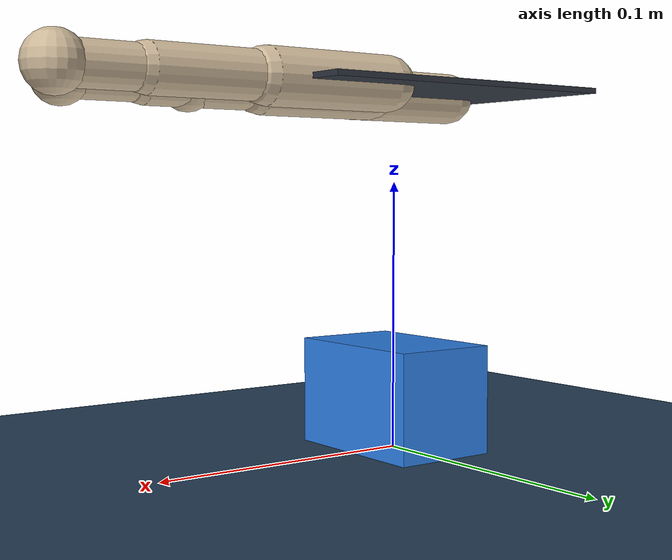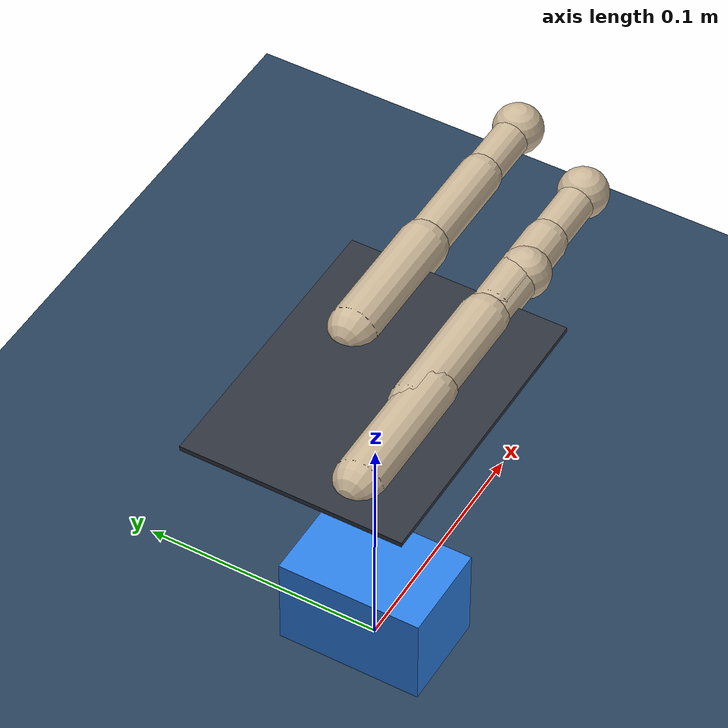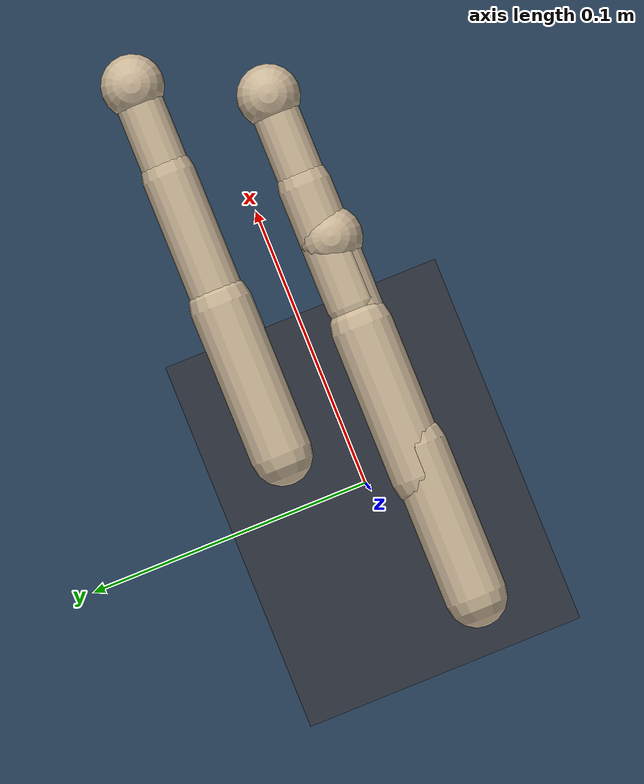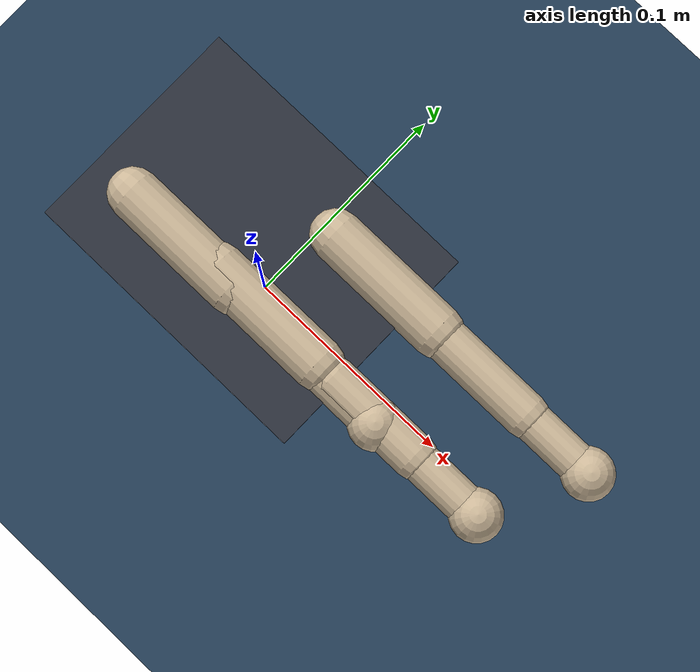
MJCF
<mujoco model="scene_prism2_tn0d0117p0d0102p0d0000_ip0d0216n0d0083p0d0034_mn0d0008p0d0137p0d0071">
  <compiler angle="radian" autolimits="true" />
  <option timestep="0.002" gravity="0 0 -9.81" integrator="implicitfast" />
  <visual>
    <headlight ambient=".4 .4 .4" diffuse=".8 .8 .8" specular="0.1 0.1 0.1" />
    <map znear=".01" />
    <quality shadowsize="2048" />
    <global elevation="-15" />
  </visual>
  <default>
    <geom friction="1.0 0.05 0.001" solref="0.01 1" solimp="0.95 0.99 0.001" />
    <motor ctrlrange="-1 1" ctrllimited="true" />
    <default class="pose">
      <joint damping="2.0" armature="0.01" />
      <position kp="4000" kv="100" forcerange="-1000 1000" />
    </default>
    <default class="ctrl">
      <joint damping="0.5" armature="0.001" />
      <position kp="30" kv="0.5" gear="1" forcerange="-10 10" ctrlrange="-1 1" />
    </default>
  </default>
  <asset>
    <texture type="skybox" builtin="gradient" rgb1="0.3 0.5 0.7" rgb2="0 0 0" width="512" height="3072" />
    <texture type="2d" name="groundplane" builtin="checker" mark="edge" rgb1="0.2 0.3 0.4" rgb2="0.1 0.2 0.3" markrgb="0.8 0.8 0.8" width="300" height="300" />
    <material name="groundplane" texture="groundplane" texuniform="true" texrepeat="5 5" reflectance="0.2" />
    <texture name="grid" type="2d" builtin="checker" rgb1="0.15 0.15 0.15" rgb2="0.25 0.25 0.25" width="256" height="256" />
    <material name="table_mat" texture="grid" texrepeat="3 3" reflectance="0.2" />
    <material name="palm_mat" rgba="0.18 0.2 0.24 1" />
    <material name="finger_mat" rgba="0.8 0.72 0.6 1" />
    <material name="object_mat" rgba="0.18 0.5 0.9 1" />
  </asset>
  <worldbody>
    <light pos="0 0 1.5" dir="0 0 -1" directional="true" diffuse=".6 .6 .6" specular=".2 .2 .2" />
    <light pos="0.5 0.5 1.0" dir="-1 -1 -1" directional="true" diffuse=".4 .4 .4" specular=".1 .1 .1" />
    <geom name="floor" type="plane" size="1.5 1.5 0.1" material="groundplane" />
    <body name="cube" pos="0.000000 0.000000 0.020000">
      <freejoint />
      <geom type="box" size="0.020000 0.030000 0.020000" density="500" material="object_mat" />
    </body>
    <body gravcomp="1" name="palm_pose" pos="0 0 0.134">
      <joint class="pose" name="palm_px" type="slide" axis="1 0 0" range="-0.20 0.20" />
      <joint class="pose" name="palm_py" type="slide" axis="0 1 0" range="-0.20 0.20" />
      <joint class="pose" name="palm_pz" type="slide" axis="0 0 1" range="-0.15 0.35" />
      <joint class="pose" name="palm_rx" type="hinge" axis="1 0 0" range="-1.57 1.57" />
      <joint class="pose" name="palm_ry" type="hinge" axis="0 1 0" range="-1.57 1.57" />
      <joint class="pose" name="palm_rz" type="hinge" axis="0 0 1" range="-3.14 3.14" />
      <geom type="box" size="0.06 0.045 0.001" material="palm_mat" />
      <body name="thumb_mount" pos="-0.041722 -0.01775 0">
        <inertial pos="0 0 0" mass="0.001" diaginertia="1e-6 1e-6 1e-6" />
        <body name="thumb_yaw_frame">
          <inertial pos="0 0 0" mass="0.001" diaginertia="1e-6 1e-6 1e-6" />
          <joint class="ctrl" name="thumb_yaw" type="hinge" axis="1 0 0" range="-1.1 1.1" />
          <body name="thumb_mcp_frame">
            <joint class="ctrl" name="thumb_mcp" type="hinge" axis="0 1 0" range="0 3.14" />
            <geom type="capsule" fromto="0 0 0 0.05 0 0" size="0.010" material="finger_mat" />
            <body name="thumb_len_frame" pos="0.05 0 0">
              <geom type="capsule" fromto="0 0 0 0.04 0 0" size="0.0085" material="finger_mat" />
              <body name="thumb_pip_frame" pos="0.04 0 0">
                <joint class="ctrl" name="thumb_pip" type="hinge" axis="0 1 0" range="-1.2 0.5" />
                <geom type="capsule" fromto="0 0 0 0.03 0 0" size="0.0075" material="finger_mat" />
                <body name="thumb_tip" pos="0.03 0 0">
                  <geom type="sphere" size="0.010" material="finger_mat" />
                </body>
              </body>
            </body>
          </body>
        </body>
      </body>
      <body name="index_mount" pos="0.021571 0.021718 0">
        <inertial pos="0 0 0" mass="0.001" diaginertia="1e-6 1e-6 1e-6" />
        <body name="index_yaw_frame">
          <inertial pos="0 0 0" mass="0.001" diaginertia="1e-6 1e-6 1e-6" />
          <joint class="ctrl" name="index_yaw" type="hinge" axis="1 0 0" range="-1.1 1.1" />
          <body name="index_mcp_frame">
            <joint class="ctrl" name="index_mcp" type="hinge" axis="0 1 0" range="0 2.5" />
            <geom type="capsule" fromto="0 0 0 0.05 0 0" size="0.010" material="finger_mat" />
            <body name="index_len_frame" pos="0.053362 0 0">
              <geom type="capsule" fromto="0 0 0 0.04 0 0" size="0.0085" material="finger_mat" />
              <body name="index_pip_frame" pos="0.04 0 0">
                <joint class="ctrl" name="index_pip" type="hinge" axis="0 1 0" range="-1.2 1.57" />
                <geom type="capsule" fromto="0 0 0 0.03 0 0" size="0.0075" material="finger_mat" />
                <body name="index_tip" pos="0.03 0 0">
                  <geom type="sphere" size="0.010" material="finger_mat" />
                </body>
              </body>
            </body>
          </body>
        </body>
      </body>
      <body name="middle_mount" pos="-0.000803 -0.016259 0">
        <inertial pos="0 0 0" mass="0.001" diaginertia="1e-6 1e-6 1e-6" />
        <body name="middle_yaw_frame">
          <inertial pos="0 0 0" mass="0.001" diaginertia="1e-6 1e-6 1e-6" />
          <joint class="ctrl" name="middle_yaw" type="hinge" axis="1 0 0" range="-1.1 1.1" />
          <body name="middle_mcp_frame">
            <joint class="ctrl" name="middle_mcp" type="hinge" axis="0 1 0" range="0 2.5" />
            <geom type="capsule" fromto="0 0 0 0.05 0 0" size="0.010" material="finger_mat" />
            <body name="middle_len_frame" pos="0.05712 0 0">
              <geom type="capsule" fromto="0 0 0 0.04 0 0" size="0.0085" material="finger_mat" />
              <body name="middle_pip_frame" pos="0.04 0 0">
                <joint class="ctrl" name="middle_pip" type="hinge" axis="0 1 0" range="-1.2 1.57" />
                <geom type="capsule" fromto="0 0 0 0.03 0 0" size="0.0075" material="finger_mat" />
                <body name="middle_tip" pos="0.03 0 0">
                  <geom type="sphere" size="0.010" material="finger_mat" />
                </body>
              </body>
            </body>
          </body>
        </body>
      </body>
    </body>
  </worldbody>
  <actuator>
    <position class="pose" name="a_palm_px" joint="palm_px" ctrlrange="-0.20 0.20" />
    <position class="pose" name="a_palm_py" joint="palm_py" ctrlrange="-0.20 0.20" />
    <position class="pose" name="a_palm_pz" joint="palm_pz" ctrlrange="-0.15 0.35" />
    <position class="pose" name="a_palm_rx" joint="palm_rx" ctrlrange="-1.57 1.57" />
    <position class="pose" name="a_palm_ry" joint="palm_ry" ctrlrange="-1.57 1.57" />
    <position class="pose" name="a_palm_rz" joint="palm_rz" ctrlrange="-3.14 3.14" />
    <position class="ctrl" name="a_thumb_yaw" joint="thumb_yaw" ctrlrange="-1.1 1.1" />
    <position class="ctrl" name="a_thumb_mcp" joint="thumb_mcp" ctrlrange="0 3.14" />
    <position class="ctrl" name="a_thumb_pip" joint="thumb_pip" ctrlrange="-1.2 0.5" />
    <position class="ctrl" name="a_index_yaw" joint="index_yaw" ctrlrange="-1.1 1.1" />
    <position class="ctrl" name="a_index_mcp" joint="index_mcp" ctrlrange="0 2.5" />
    <position class="ctrl" name="a_index_pip" joint="index_pip" ctrlrange="-1.2 1.57" />
    <position class="ctrl" name="a_middle_yaw" joint="middle_yaw" ctrlrange="-1.1 1.1" />
    <position class="ctrl" name="a_middle_mcp" joint="middle_mcp" ctrlrange="0 2.5" />
    <position class="ctrl" name="a_middle_pip" joint="middle_pip" ctrlrange="-1.2 1.57" />
  </actuator>
  <keyframe>
    <key name="open" qpos="&#10;        0 0 0.02 1 0 0 0 0.02 0 0 0 0 0 0 2 -0.707 0 1.25 1 0 1.25 1&#10;      " ctrl="&#10;        0.02 0 0 0 0 0 0 2 -0.707 0 1.25 1 0 1.25 1&#10;      " />
    <key name="foundational" qpos="&#10;        -0.008170090684 -0.01044107499 0.02233616382 0.9414610648 -0.02623069988 -0.03363415458 -0.3344125559 0.02002923784 -1.809977225e-05 -0.0003999202898 1.962578799e-06 -9.830275662e-06 -2.698301066e-07 0.09058324206 1.892383852 -0.5565542876 0.05288950848 1.459417858 1.184235274 -0.2425292395 1.478054995 1.109993644&#10;      " ctrl="&#10;        0.02 0 0 0 0 0 0.04759260414 1.838513475 -0.5715285052 0.05293271743 1.45939719 1.184301786 -0.1994262222 1.534226074 1.118972875&#10;      " />
  </keyframe>
</mujoco>
